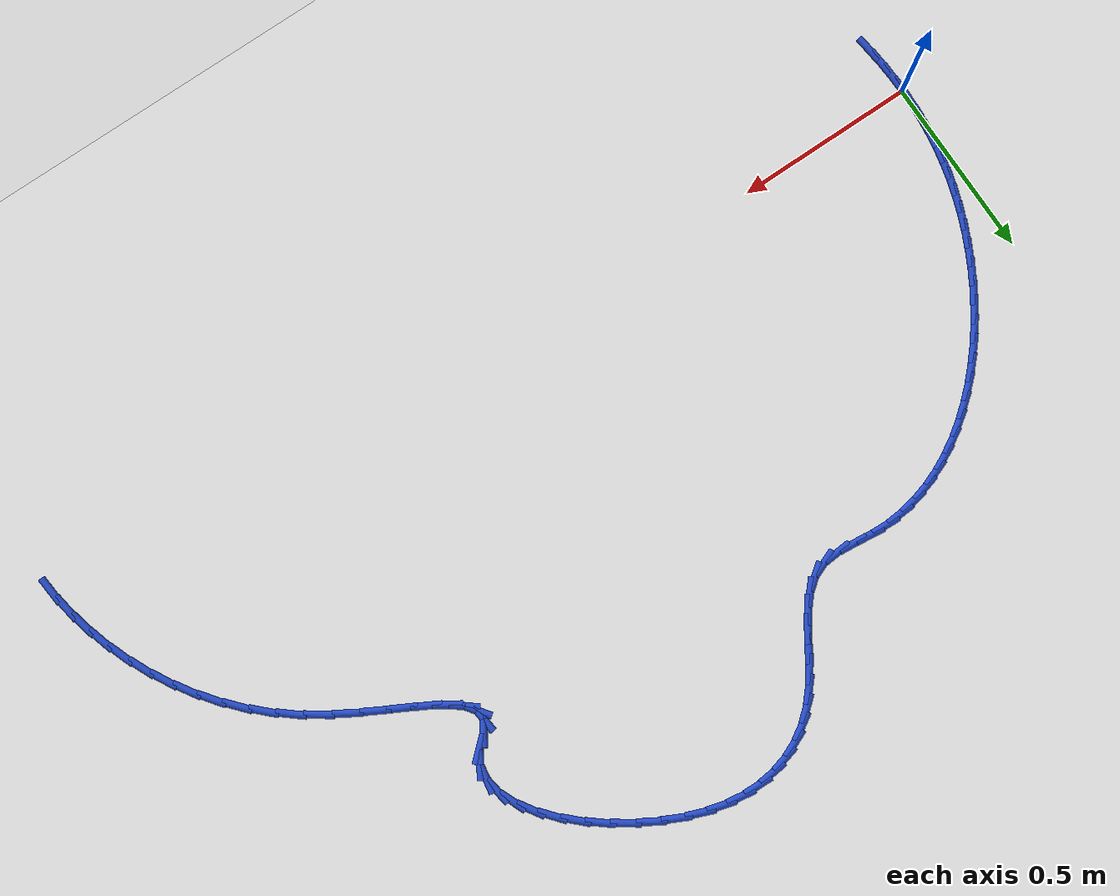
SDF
<sdf version="1.6">
 <world name="default">
  <model name="ground_plane">
   <static>1</static>
   <link name="link">
    <collision name="collision">
     <geometry><plane><normal>0 0 1</normal><size>100 100</size></plane></geometry>
     <surface><friction><ode><mu>100</mu><mu2>50</mu2></ode></friction></surface>
    </collision>
    <visual name="visual">
     <cast_shadows>0</cast_shadows>
     <geometry><plane><normal>0 0 1</normal><size>100 100</size></plane></geometry>
     <material>
      <script><uri>file://media/materials/scripts/gazebo.material</uri><name>Gazebo/WhiteGlow</name></script>
     </material>
    </visual>
   </link>
  </model>
  <model name="line">
   <link name="link_0">
    <pose>-1.734723475976807e-18 1.0408340855860843e-16 0.01 0 1.57 1.5473383544883825</pose>
    <collision name="collision">
     <geometry><cylinder><radius>0.01</radius><length>0.08</length></cylinder></geometry>
    </collision>
    <visual name="visual">
     <material>
      <script><name>Gazebo/Blue</name><uri>file://media/materials/scripts/gazebo.material</uri></script>
     </material>
     <geometry><cylinder><radius>0.01</radius><length>0.08</length></cylinder></geometry>
    </visual>
   </link>
   <link name="link_1">
    <pose>0.001089594265778912 0.04644026281776997 0.01 0 1.57 1.5030457825430155</pose>
    <collision name="collision">
     <geometry><cylinder><radius>0.01</radius><length>0.08</length></cylinder></geometry>
    </collision>
    <visual name="visual">
     <material>
      <script><name>Gazebo/Blue</name><uri>file://media/materials/scripts/gazebo.material</uri></script>
     </material>
     <geometry><cylinder><radius>0.01</radius><length>0.08</length></cylinder></geometry>
    </visual>
   </link>
   <link name="link_2">
    <pose>0.004218759372297732 0.09255614145097091 0.01 0 1.57 1.4571612512734187</pose>
    <collision name="collision">
     <geometry><cylinder><radius>0.01</radius><length>0.08</length></cylinder></geometry>
    </collision>
    <visual name="visual">
     <material>
      <script><name>Gazebo/Blue</name><uri>file://media/materials/scripts/gazebo.material</uri></script>
     </material>
     <geometry><cylinder><radius>0.01</radius><length>0.08</length></cylinder></geometry>
    </visual>
   </link>
   <link name="link_3">
    <pose>0.0094524364315779 0.13841460768023775 0.01 0 1.57 1.4100868340457353</pose>
    <collision name="collision">
     <geometry><cylinder><radius>0.01</radius><length>0.08</length></cylinder></geometry>
    </collision>
    <visual name="visual">
     <material>
      <script><name>Gazebo/Blue</name><uri>file://media/materials/scripts/gazebo.material</uri></script>
     </material>
     <geometry><cylinder><radius>0.01</radius><length>0.08</length></cylinder></geometry>
    </visual>
   </link>
   <link name="link_4">
    <pose>0.016855566555640876 0.1840826332862054 0.01 0 1.57 1.3622659840107938</pose>
    <collision name="collision">
     <geometry><cylinder><radius>0.01</radius><length>0.08</length></cylinder></geometry>
    </collision>
    <visual name="visual">
     <material>
      <script><name>Gazebo/Blue</name><uri>file://media/materials/scripts/gazebo.material</uri></script>
     </material>
     <geometry><cylinder><radius>0.01</radius><length>0.08</length></cylinder></geometry>
    </visual>
   </link>
   <link name="link_5">
    <pose>0.02649309085650813 0.2296271900495086 0.01 0 1.57 1.3141652478452397</pose>
    <collision name="collision">
     <geometry><cylinder><radius>0.01</radius><length>0.08</length></cylinder></geometry>
    </collision>
    <visual name="visual">
     <material>
      <script><name>Gazebo/Blue</name><uri>file://media/materials/scripts/gazebo.material</uri></script>
     </material>
     <geometry><cylinder><radius>0.01</radius><length>0.08</length></cylinder></geometry>
    </visual>
   </link>
   <link name="link_6">
    <pose>0.038429950446201094 0.2751152497507822 0.01 0 1.57 1.266253507206151</pose>
    <collision name="collision">
     <geometry><cylinder><radius>0.01</radius><length>0.08</length></cylinder></geometry>
    </collision>
    <visual name="visual">
     <material>
      <script><name>Gazebo/Blue</name><uri>file://media/materials/scripts/gazebo.material</uri></script>
     </material>
     <geometry><cylinder><radius>0.01</radius><length>0.08</length></cylinder></geometry>
    </visual>
   </link>
   <link name="link_7">
    <pose>0.05273108643674122 0.3206137841706611 0.01 0 1.57 1.2189810932053469</pose>
    <collision name="collision">
     <geometry><cylinder><radius>0.01</radius><length>0.08</length></cylinder></geometry>
    </collision>
    <visual name="visual">
     <material>
      <script><name>Gazebo/Blue</name><uri>file://media/materials/scripts/gazebo.material</uri></script>
     </material>
     <geometry><cylinder><radius>0.01</radius><length>0.08</length></cylinder></geometry>
    </visual>
   </link>
   <link name="link_8">
    <pose>0.06946140719264884 0.36618968924018297 0.01 0 1.57 1.1727773760705353</pose>
    <collision name="collision">
     <geometry><cylinder><radius>0.01</radius><length>0.08</length></cylinder></geometry>
    </collision>
    <visual name="visual">
     <material>
      <script><name>Gazebo/Blue</name><uri>file://media/materials/scripts/gazebo.material</uri></script>
     </material>
     <geometry><cylinder><radius>0.01</radius><length>0.08</length></cylinder></geometry>
    </visual>
   </link>
   <link name="link_9">
    <pose>0.08865097903789822 0.41182915993174 0.01 0 1.57 1.1275881045708818</pose>
    <collision name="collision">
     <geometry><cylinder><radius>0.01</radius><length>0.08</length></cylinder></geometry>
    </collision>
    <visual name="visual">
     <material>
      <script><name>Gazebo/Blue</name><uri>file://media/materials/scripts/gazebo.material</uri></script>
     </material>
     <geometry><cylinder><radius>0.01</radius><length>0.08</length></cylinder></geometry>
    </visual>
   </link>
   <link name="link_10">
    <pose>0.11022886189254487 0.4572844406942226 0.01 0 1.57 1.0827953044987713</pose>
    <collision name="collision">
     <geometry><cylinder><radius>0.01</radius><length>0.08</length></cylinder></geometry>
    </collision>
    <visual name="visual">
     <material>
      <script><name>Gazebo/Blue</name><uri>file://media/materials/scripts/gazebo.material</uri></script>
     </material>
     <geometry><cylinder><radius>0.01</radius><length>0.08</length></cylinder></geometry>
    </visual>
   </link>
   <link name="link_11">
    <pose>0.13410591677084932 0.502265623762674 0.01 0 1.57 1.037779779084442</pose>
    <collision name="collision">
     <geometry><cylinder><radius>0.01</radius><length>0.08</length></cylinder></geometry>
    </collision>
    <visual name="visual">
     <material>
      <script><name>Gazebo/Blue</name><uri>file://media/materials/scripts/gazebo.material</uri></script>
     </material>
     <geometry><cylinder><radius>0.01</radius><length>0.08</length></cylinder></geometry>
    </visual>
   </link>
   <link name="link_12">
    <pose>0.16019300468707245 0.5464828013721387 0.01 0 1.57 0.9919517788861468</pose>
    <collision name="collision">
     <geometry><cylinder><radius>0.01</radius><length>0.08</length></cylinder></geometry>
    </collision>
    <visual name="visual">
     <material>
      <script><name>Gazebo/Blue</name><uri>file://media/materials/scripts/gazebo.material</uri></script>
     </material>
     <geometry><cylinder><radius>0.01</radius><length>0.08</length></cylinder></geometry>
    </visual>
   </link>
   <link name="link_13">
    <pose>0.1884009866554748 0.5896460657576601 0.01 0 1.57 0.9447331194122285</pose>
    <collision name="collision">
     <geometry><cylinder><radius>0.01</radius><length>0.08</length></cylinder></geometry>
    </collision>
    <visual name="visual">
     <material>
      <script><name>Gazebo/Blue</name><uri>file://media/materials/scripts/gazebo.material</uri></script>
     </material>
     <geometry><cylinder><radius>0.01</radius><length>0.08</length></cylinder></geometry>
    </visual>
   </link>
   <link name="link_14">
    <pose>0.218640723690317 0.6314655091542819 0.01 0 1.57 0.8955430141777623</pose>
    <collision name="collision">
     <geometry><cylinder><radius>0.01</radius><length>0.08</length></cylinder></geometry>
    </collision>
    <visual name="visual">
     <material>
      <script><name>Gazebo/Blue</name><uri>file://media/materials/scripts/gazebo.material</uri></script>
     </material>
     <geometry><cylinder><radius>0.01</radius><length>0.08</length></cylinder></geometry>
    </visual>
   </link>
   <link name="link_15">
    <pose>0.25082307680585975 0.6716512237970481 0.01 0 1.57 0.8437877352451366</pose>
    <collision name="collision">
     <geometry><cylinder><radius>0.01</radius><length>0.08</length></cylinder></geometry>
    </collision>
    <visual name="visual">
     <material>
      <script><name>Gazebo/Blue</name><uri>file://media/materials/scripts/gazebo.material</uri></script>
     </material>
     <geometry><cylinder><radius>0.01</radius><length>0.08</length></cylinder></geometry>
    </visual>
   </link>
   <link name="link_16">
    <pose>0.28485890701636385 0.7099133019210027 0.01 0 1.57 0.7888549346922865</pose>
    <collision name="collision">
     <geometry><cylinder><radius>0.01</radius><length>0.08</length></cylinder></geometry>
    </collision>
    <visual name="visual">
     <material>
      <script><name>Gazebo/Blue</name><uri>file://media/materials/scripts/gazebo.material</uri></script>
     </material>
     <geometry><cylinder><radius>0.01</radius><length>0.08</length></cylinder></geometry>
    </visual>
   </link>
   <link name="link_17">
    <pose>0.32065907533608984 0.7459618357611892 0.01 0 1.57 0.730114356622109</pose>
    <collision name="collision">
     <geometry><cylinder><radius>0.01</radius><length>0.08</length></cylinder></geometry>
    </collision>
    <visual name="visual">
     <material>
      <script><name>Gazebo/Blue</name><uri>file://media/materials/scripts/gazebo.material</uri></script>
     </material>
     <geometry><cylinder><radius>0.01</radius><length>0.08</length></cylinder></geometry>
    </visual>
   </link>
   <link name="link_18">
    <pose>0.35813444277929835 0.7795069175526516 0.01 0 1.57 0.6669277463735875</pose>
    <collision name="collision">
     <geometry><cylinder><radius>0.01</radius><length>0.08</length></cylinder></geometry>
    </collision>
    <visual name="visual">
     <material>
      <script><name>Gazebo/Blue</name><uri>file://media/materials/scripts/gazebo.material</uri></script>
     </material>
     <geometry><cylinder><radius>0.01</radius><length>0.08</length></cylinder></geometry>
    </visual>
   </link>
   <link name="link_19">
    <pose>0.39719587036025 0.8102586395304332 0.01 0 1.57 0.5986719058905151</pose>
    <collision name="collision">
     <geometry><cylinder><radius>0.01</radius><length>0.08</length></cylinder></geometry>
    </collision>
    <visual name="visual">
     <material>
      <script><name>Gazebo/Blue</name><uri>file://media/materials/scripts/gazebo.material</uri></script>
     </material>
     <geometry><cylinder><radius>0.01</radius><length>0.08</length></cylinder></geometry>
    </visual>
   </link>
   <link name="link_20">
    <pose>0.4377542190932057 0.8379270939295784 0.01 0 1.57 0.5247796738081281</pose>
    <collision name="collision">
     <geometry><cylinder><radius>0.01</radius><length>0.08</length></cylinder></geometry>
    </collision>
    <visual name="visual">
     <material>
      <script><name>Gazebo/Blue</name><uri>file://media/materials/scripts/gazebo.material</uri></script>
     </material>
     <geometry><cylinder><radius>0.01</radius><length>0.08</length></cylinder></geometry>
    </visual>
   </link>
   <link name="link_21">
    <pose>0.479720349992426 0.8622223729851309 0.01 0 1.57 0.44480329778574185</pose>
    <collision name="collision">
     <geometry><cylinder><radius>0.01</radius><length>0.08</length></cylinder></geometry>
    </collision>
    <visual name="visual">
     <material>
      <script><name>Gazebo/Blue</name><uri>file://media/materials/scripts/gazebo.material</uri></script>
     </material>
     <geometry><cylinder><radius>0.01</radius><length>0.08</length></cylinder></geometry>
    </visual>
   </link>
   <link name="link_22">
    <pose>0.5230051240721714 0.8828545689321343 0.01 0 1.57 0.3585018195062949</pose>
    <collision name="collision">
     <geometry><cylinder><radius>0.01</radius><length>0.08</length></cylinder></geometry>
    </collision>
    <visual name="visual">
     <material>
      <script><name>Gazebo/Blue</name><uri>file://media/materials/scripts/gazebo.material</uri></script>
     </material>
     <geometry><cylinder><radius>0.01</radius><length>0.08</length></cylinder></geometry>
    </visual>
   </link>
   <link name="link_23">
    <pose>0.567519402346703 0.8995337740056326 0.01 0 1.57 0.26594703226347116</pose>
    <collision name="collision">
     <geometry><cylinder><radius>0.01</radius><length>0.08</length></cylinder></geometry>
    </collision>
    <visual name="visual">
     <material>
      <script><name>Gazebo/Blue</name><uri>file://media/materials/scripts/gazebo.material</uri></script>
     </material>
     <geometry><cylinder><radius>0.01</radius><length>0.08</length></cylinder></geometry>
    </visual>
   </link>
   <link name="link_24">
    <pose>0.6131740458302809 0.9119700804406694 0.01 0 1.57 0.16763056884097485</pose>
    <collision name="collision">
     <geometry><cylinder><radius>0.01</radius><length>0.08</length></cylinder></geometry>
    </collision>
    <visual name="visual">
     <material>
      <script><name>Gazebo/Blue</name><uri>file://media/materials/scripts/gazebo.material</uri></script>
     </material>
     <geometry><cylinder><radius>0.01</radius><length>0.08</length></cylinder></geometry>
    </visual>
   </link>
   <link name="link_25">
    <pose>0.6598799155371664 0.9198735804722888 0.01 0 1.57 0.06454035885185302</pose>
    <collision name="collision">
     <geometry><cylinder><radius>0.01</radius><length>0.08</length></cylinder></geometry>
    </collision>
    <visual name="visual">
     <material>
      <script><name>Gazebo/Blue</name><uri>file://media/materials/scripts/gazebo.material</uri></script>
     </material>
     <geometry><cylinder><radius>0.01</radius><length>0.08</length></cylinder></geometry>
    </visual>
   </link>
   <link name="link_26">
    <pose>0.7075478724816195 0.922954366335534 0.01 0 1.57 -0.04161294874814246</pose>
    <collision name="collision">
     <geometry><cylinder><radius>0.01</radius><length>0.08</length></cylinder></geometry>
    </collision>
    <visual name="visual">
     <material>
      <script><name>Gazebo/Blue</name><uri>file://media/materials/scripts/gazebo.material</uri></script>
     </material>
     <geometry><cylinder><radius>0.01</radius><length>0.08</length></cylinder></geometry>
    </visual>
   </link>
   <link name="link_27">
    <pose>0.7560852770717118 0.9209334151529838 0.01 0 1.57 -0.11482870221932892</pose>
    <collision name="collision">
     <geometry><cylinder><radius>0.01</radius><length>0.08</length></cylinder></geometry>
    </collision>
    <visual name="visual">
     <material>
      <script><name>Gazebo/Blue</name><uri>file://media/materials/scripts/gazebo.material</uri></script>
     </material>
     <geometry><cylinder><radius>0.01</radius><length>0.08</length></cylinder></geometry>
    </visual>
   </link>
   <link name="link_28">
    <pose>0.8048270281217221 0.9153117329133174 0.01 0 1.57 -0.08438538848249325</pose>
    <collision name="collision">
     <geometry><cylinder><radius>0.01</radius><length>0.08</length></cylinder></geometry>
    </collision>
    <visual name="visual">
     <material>
      <script><name>Gazebo/Blue</name><uri>file://media/materials/scripts/gazebo.material</uri></script>
     </material>
     <geometry><cylinder><radius>0.01</radius><length>0.08</length></cylinder></geometry>
    </visual>
   </link>
   <link name="link_29">
    <pose>0.8519054832552916 0.9113295424456483 0.01 0 1.57 0.07748621107274571</pose>
    <collision name="collision">
     <geometry><cylinder><radius>0.01</radius><length>0.08</length></cylinder></geometry>
    </collision>
    <visual name="visual">
     <material>
      <script><name>Gazebo/Blue</name><uri>file://media/materials/scripts/gazebo.material</uri></script>
     </material>
     <geometry><cylinder><radius>0.01</radius><length>0.08</length></cylinder></geometry>
    </visual>
   </link>
   <link name="link_30">
    <pose>0.8953012690869138 0.9146988634281619 0.01 0 1.57 0.3780868927722945</pose>
    <collision name="collision">
     <geometry><cylinder><radius>0.01</radius><length>0.08</length></cylinder></geometry>
    </collision>
    <visual name="visual">
     <material>
      <script><name>Gazebo/Blue</name><uri>file://media/materials/scripts/gazebo.material</uri></script>
     </material>
     <geometry><cylinder><radius>0.01</radius><length>0.08</length></cylinder></geometry>
    </visual>
   </link>
   <link name="link_31">
    <pose>0.9334954465727384 0.9298694420082915 0.01 0 1.57 0.6559467484666813</pose>
    <collision name="collision">
     <geometry><cylinder><radius>0.01</radius><length>0.08</length></cylinder></geometry>
    </collision>
    <visual name="visual">
     <material>
      <script><name>Gazebo/Blue</name><uri>file://media/materials/scripts/gazebo.material</uri></script>
     </material>
     <geometry><cylinder><radius>0.01</radius><length>0.08</length></cylinder></geometry>
    </visual>
   </link>
   <link name="link_32">
    <pose>0.9671557547510595 0.9557754438994175 0.01 0 1.57 0.8423977463634394</pose>
    <collision name="collision">
     <geometry><cylinder><radius>0.01</radius><length>0.08</length></cylinder></geometry>
    </collision>
    <visual name="visual">
     <material>
      <script><name>Gazebo/Blue</name><uri>file://media/materials/scripts/gazebo.material</uri></script>
     </material>
     <geometry><cylinder><radius>0.01</radius><length>0.08</length></cylinder></geometry>
    </visual>
   </link>
   <link name="link_33">
    <pose>0.9975470306072215 0.9898449412655947 0.01 0 1.57 0.9495827120929485</pose>
    <collision name="collision">
     <geometry><cylinder><radius>0.01</radius><length>0.08</length></cylinder></geometry>
    </collision>
    <visual name="visual">
     <material>
      <script><name>Gazebo/Blue</name><uri>file://media/materials/scripts/gazebo.material</uri></script>
     </material>
     <geometry><cylinder><radius>0.01</radius><length>0.08</length></cylinder></geometry>
    </visual>
   </link>
   <link name="link_34">
    <pose>1.0259341250950313 1.0295059710374463 0.01 0 1.57 0.9959812496932988</pose>
    <collision name="collision">
     <geometry><cylinder><radius>0.01</radius><length>0.08</length></cylinder></geometry>
    </collision>
    <visual name="visual">
     <material>
      <script><name>Gazebo/Blue</name><uri>file://media/materials/scripts/gazebo.material</uri></script>
     </material>
     <geometry><cylinder><radius>0.01</radius><length>0.08</length></cylinder></geometry>
    </visual>
   </link>
   <link name="link_35">
    <pose>1.0535818891682955 1.0721865701455955 0.01 0 1.57 0.9921432910593081</pose>
    <collision name="collision">
     <geometry><cylinder><radius>0.01</radius><length>0.08</length></cylinder></geometry>
    </collision>
    <visual name="visual">
     <material>
      <script><name>Gazebo/Blue</name><uri>file://media/materials/scripts/gazebo.material</uri></script>
     </material>
     <geometry><cylinder><radius>0.01</radius><length>0.08</length></cylinder></geometry>
    </visual>
   </link>
   <link name="link_36">
    <pose>1.0817551737808204 1.1153147755206647 0.01 0 1.57 0.9397279849570357</pose>
    <collision name="collision">
     <geometry><cylinder><radius>0.01</radius><length>0.08</length></cylinder></geometry>
    </collision>
    <visual name="visual">
     <material>
      <script><name>Gazebo/Blue</name><uri>file://media/materials/scripts/gazebo.material</uri></script>
     </material>
     <geometry><cylinder><radius>0.01</radius><length>0.08</length></cylinder></geometry>
    </visual>
   </link>
   <link name="link_37">
    <pose>1.1117188298864131 1.1563186240932772 0.01 0 1.57 0.8347586795625872</pose>
    <collision name="collision">
     <geometry><cylinder><radius>0.01</radius><length>0.08</length></cylinder></geometry>
    </collision>
    <visual name="visual">
     <material>
      <script><name>Gazebo/Blue</name><uri>file://media/materials/scripts/gazebo.material</uri></script>
     </material>
     <geometry><cylinder><radius>0.01</radius><length>0.08</length></cylinder></geometry>
    </visual>
   </link>
   <link name="link_38">
    <pose>1.1446857114057727 1.1927119442131495 0.01 0 1.57 0.6986438046717055</pose>
    <collision name="collision">
     <geometry><cylinder><radius>0.01</radius><length>0.08</length></cylinder></geometry>
    </collision>
    <visual name="visual">
     <material>
      <script><name>Gazebo/Blue</name><uri>file://media/materials/scripts/gazebo.material</uri></script>
     </material>
     <geometry><cylinder><radius>0.01</radius><length>0.08</length></cylinder></geometry>
    </visual>
   </link>
   <link name="link_39">
    <pose>1.1810911110173015 1.2232914851664756 0.01 0 1.57 0.5540406453895251</pose>
    <collision name="collision">
     <geometry><cylinder><radius>0.01</radius><length>0.08</length></cylinder></geometry>
    </collision>
    <visual name="visual">
     <material>
      <script><name>Gazebo/Blue</name><uri>file://media/materials/scripts/gazebo.material</uri></script>
     </material>
     <geometry><cylinder><radius>0.01</radius><length>0.08</length></cylinder></geometry>
    </visual>
   </link>
   <link name="link_40">
    <pose>1.220771992706759 1.2478411961729523 0.01 0 1.57 0.40480872486395214</pose>
    <collision name="collision">
     <geometry><cylinder><radius>0.01</radius><length>0.08</length></cylinder></geometry>
    </collision>
    <visual name="visual">
     <material>
      <script><name>Gazebo/Blue</name><uri>file://media/materials/scripts/gazebo.material</uri></script>
     </material>
     <geometry><cylinder><radius>0.01</radius><length>0.08</length></cylinder></geometry>
    </visual>
   </link>
   <link name="link_41">
    <pose>1.2635499431950588 1.2661703978493364 0.01 0 1.57 0.25512418469562126</pose>
    <collision name="collision">
     <geometry><cylinder><radius>0.01</radius><length>0.08</length></cylinder></geometry>
    </collision>
    <visual name="visual">
     <material>
      <script><name>Gazebo/Blue</name><uri>file://media/materials/scripts/gazebo.material</uri></script>
     </material>
     <geometry><cylinder><radius>0.01</radius><length>0.08</length></cylinder></geometry>
    </visual>
   </link>
   <link name="link_42">
    <pose>1.3092465492031138 1.278088410812385 0.01 0 1.57 0.10931660457676289</pose>
    <collision name="collision">
     <geometry><cylinder><radius>0.01</radius><length>0.08</length></cylinder></geometry>
    </collision>
    <visual name="visual">
     <material>
      <script><name>Gazebo/Blue</name><uri>file://media/materials/scripts/gazebo.material</uri></script>
     </material>
     <geometry><cylinder><radius>0.01</radius><length>0.08</length></cylinder></geometry>
    </visual>
   </link>
   <link name="link_43">
    <pose>1.3576833974518372 1.283404555678854 0.01 0 1.57 -0.028941738247848084</pose>
    <collision name="collision">
     <geometry><cylinder><radius>0.01</radius><length>0.08</length></cylinder></geometry>
    </collision>
    <visual name="visual">
     <material>
      <script><name>Gazebo/Blue</name><uri>file://media/materials/scripts/gazebo.material</uri></script>
     </material>
     <geometry><cylinder><radius>0.01</radius><length>0.08</length></cylinder></geometry>
    </visual>
   </link>
   <link name="link_44">
    <pose>1.408682074662142 1.2819281530655002 0.01 0 1.57 -0.15716618969718724</pose>
    <collision name="collision">
     <geometry><cylinder><radius>0.01</radius><length>0.08</length></cylinder></geometry>
    </collision>
    <visual name="visual">
     <material>
      <script><name>Gazebo/Blue</name><uri>file://media/materials/scripts/gazebo.material</uri></script>
     </material>
     <geometry><cylinder><radius>0.01</radius><length>0.08</length></cylinder></geometry>
    </visual>
   </link>
   <link name="link_45">
    <pose>1.4620641675549433 1.2734685235890806 0.01 0 1.57 -0.2738550529248303</pose>
    <collision name="collision">
     <geometry><cylinder><radius>0.01</radius><length>0.08</length></cylinder></geometry>
    </collision>
    <visual name="visual">
     <material>
      <script><name>Gazebo/Blue</name><uri>file://media/materials/scripts/gazebo.material</uri></script>
     </material>
     <geometry><cylinder><radius>0.01</radius><length>0.08</length></cylinder></geometry>
    </visual>
   </link>
   <link name="link_46">
    <pose>1.5176229147134406 1.257861353680724 0.01 0 1.57 -0.3742647170377452</pose>
    <collision name="collision">
     <geometry><cylinder><radius>0.01</radius><length>0.08</length></cylinder></geometry>
    </collision>
    <visual name="visual">
     <material>
      <script><name>Gazebo/Blue</name><uri>file://media/materials/scripts/gazebo.material</uri></script>
     </material>
     <geometry><cylinder><radius>0.01</radius><length>0.08</length></cylinder></geometry>
    </visual>
   </link>
   <link name="link_47">
    <pose>1.5745502792581543 1.23550155935475 0.01 0 1.57 -0.45979591747731413</pose>
    <collision name="collision">
     <geometry><cylinder><radius>0.01</radius><length>0.08</length></cylinder></geometry>
    </collision>
    <visual name="visual">
     <material>
      <script><name>Gazebo/Blue</name><uri>file://media/materials/scripts/gazebo.material</uri></script>
     </material>
     <geometry><cylinder><radius>0.01</radius><length>0.08</length></cylinder></geometry>
    </visual>
   </link>
   <link name="link_48">
    <pose>1.631463851525005 1.207318264776078 0.01 0 1.57 -0.5372290545528736</pose>
    <collision name="collision">
     <geometry><cylinder><radius>0.01</radius><length>0.08</length></cylinder></geometry>
    </collision>
    <visual name="visual">
     <material>
      <script><name>Gazebo/Blue</name><uri>file://media/materials/scripts/gazebo.material</uri></script>
     </material>
     <geometry><cylinder><radius>0.01</radius><length>0.08</length></cylinder></geometry>
    </visual>
   </link>
   <link name="link_49">
    <pose>1.6869582577822209 1.1742619523502424 0.01 0 1.57 -0.6121255080288873</pose>
    <collision name="collision">
     <geometry><cylinder><radius>0.01</radius><length>0.08</length></cylinder></geometry>
    </collision>
    <visual name="visual">
     <material>
      <script><name>Gazebo/Blue</name><uri>file://media/materials/scripts/gazebo.material</uri></script>
     </material>
     <geometry><cylinder><radius>0.01</radius><length>0.08</length></cylinder></geometry>
    </visual>
   </link>
   <link name="link_50">
    <pose>1.7396281242980278 1.1372831044827763 0.01 0 1.57 -0.6896518820978307</pose>
    <collision name="collision">
     <geometry><cylinder><radius>0.01</radius><length>0.08</length></cylinder></geometry>
    </collision>
    <visual name="visual">
     <material>
      <script><name>Gazebo/Blue</name><uri>file://media/materials/scripts/gazebo.material</uri></script>
     </material>
     <geometry><cylinder><radius>0.01</radius><length>0.08</length></cylinder></geometry>
    </visual>
   </link>
   <link name="link_51">
    <pose>1.788068077340651 1.0973322035792132 0.01 0 1.57 -0.7755822200771194</pose>
    <collision name="collision">
     <geometry><cylinder><radius>0.01</radius><length>0.08</length></cylinder></geometry>
    </collision>
    <visual name="visual">
     <material>
      <script><name>Gazebo/Blue</name><uri>file://media/materials/scripts/gazebo.material</uri></script>
     </material>
     <geometry><cylinder><radius>0.01</radius><length>0.08</length></cylinder></geometry>
    </visual>
   </link>
   <link name="link_52">
    <pose>1.8308727431783183 1.055359732045087 0.01 0 1.57 -0.877508052750104</pose>
    <collision name="collision">
     <geometry><cylinder><radius>0.01</radius><length>0.08</length></cylinder></geometry>
    </collision>
    <visual name="visual">
     <material>
      <script><name>Gazebo/Blue</name><uri>file://media/materials/scripts/gazebo.material</uri></script>
     </material>
     <geometry><cylinder><radius>0.01</radius><length>0.08</length></cylinder></geometry>
    </visual>
   </link>
   <link name="link_53">
    <pose>1.866636748079254 1.012316172285931 0.01 0 1.57 -1.0065466959410987</pose>
    <collision name="collision">
     <geometry><cylinder><radius>0.01</radius><length>0.08</length></cylinder></geometry>
    </collision>
    <visual name="visual">
     <material>
      <script><name>Gazebo/Blue</name><uri>file://media/materials/scripts/gazebo.material</uri></script>
     </material>
     <geometry><cylinder><radius>0.01</radius><length>0.08</length></cylinder></geometry>
    </visual>
   </link>
   <link name="link_54">
    <pose>1.8939547183116852 0.9691520067072793 0.01 0 1.57 -1.1794867129779139</pose>
    <collision name="collision">
     <geometry><cylinder><radius>0.01</radius><length>0.08</length></cylinder></geometry>
    </collision>
    <visual name="visual">
     <material>
      <script><name>Gazebo/Blue</name><uri>file://media/materials/scripts/gazebo.material</uri></script>
     </material>
     <geometry><cylinder><radius>0.01</radius><length>0.08</length></cylinder></geometry>
    </visual>
   </link>
   <link name="link_55">
    <pose>1.911421280143838 0.9268177177146641 0.01 0 1.57 -1.418852538185806</pose>
    <collision name="collision">
     <geometry><cylinder><radius>0.01</radius><length>0.08</length></cylinder></geometry>
    </collision>
    <visual name="visual">
     <material>
      <script><name>Gazebo/Blue</name><uri>file://media/materials/scripts/gazebo.material</uri></script>
     </material>
     <geometry><cylinder><radius>0.01</radius><length>0.08</length></cylinder></geometry>
    </visual>
   </link>
   <link name="link_56">
    <pose>1.9176310598439388 0.8862637877136208 0.01 0 1.57 1.4018293170558438</pose>
    <collision name="collision">
     <geometry><cylinder><radius>0.01</radius><length>0.08</length></cylinder></geometry>
    </collision>
    <visual name="visual">
     <material>
      <script><name>Gazebo/Blue</name><uri>file://media/materials/scripts/gazebo.material</uri></script>
     </material>
     <geometry><cylinder><radius>0.01</radius><length>0.08</length></cylinder></geometry>
    </visual>
   </link>
   <link name="link_57">
    <pose>1.9111786836802134 0.848440699109682 0.01 0 1.57 1.0296266846451025</pose>
    <collision name="collision">
     <geometry><cylinder><radius>0.01</radius><length>0.08</length></cylinder></geometry>
    </collision>
    <visual name="visual">
     <material>
      <script><name>Gazebo/Blue</name><uri>file://media/materials/scripts/gazebo.material</uri></script>
     </material>
     <geometry><cylinder><radius>0.01</radius><length>0.08</length></cylinder></geometry>
    </visual>
   </link>
   <link name="link_58">
    <pose>1.8906587779208883 0.8142989343083809 0.01 0 1.57 0.7320176689935225</pose>
    <collision name="collision">
     <geometry><cylinder><radius>0.01</radius><length>0.08</length></cylinder></geometry>
    </collision>
    <visual name="visual">
     <material>
      <script><name>Gazebo/Blue</name><uri>file://media/materials/scripts/gazebo.material</uri></script>
     </material>
     <geometry><cylinder><radius>0.01</radius><length>0.08</length></cylinder></geometry>
    </visual>
   </link>
   <link name="link_59">
    <pose>1.857509855114538 0.7845127150880845 0.01 0 1.57 0.9939674138368683</pose>
    <collision name="collision">
     <geometry><cylinder><radius>0.01</radius><length>0.08</length></cylinder></geometry>
    </collision>
    <visual name="visual">
     <material>
      <script><name>Gazebo/Blue</name><uri>file://media/materials/scripts/gazebo.material</uri></script>
     </material>
     <geometry><cylinder><radius>0.01</radius><length>0.08</length></cylinder></geometry>
    </visual>
   </link>
   <link name="link_60">
    <pose>1.8394296436210553 0.7567246037293542 0.01 0 1.57 -1.4835059076597954</pose>
    <collision name="collision">
     <geometry><cylinder><radius>0.01</radius><length>0.08</length></cylinder></geometry>
    </collision>
    <visual name="visual">
     <material>
      <script><name>Gazebo/Blue</name><uri>file://media/materials/scripts/gazebo.material</uri></script>
     </material>
     <geometry><cylinder><radius>0.01</radius><length>0.08</length></cylinder></geometry>
    </visual>
   </link>
   <link name="link_61">
    <pose>1.8417955072330823 0.7296901182837572 0.01 0 1.57 -0.9347552738750693</pose>
    <collision name="collision">
     <geometry><cylinder><radius>0.01</radius><length>0.08</length></cylinder></geometry>
    </collision>
    <visual name="visual">
     <material>
      <script><name>Gazebo/Blue</name><uri>file://media/materials/scripts/gazebo.material</uri></script>
     </material>
     <geometry><cylinder><radius>0.01</radius><length>0.08</length></cylinder></geometry>
    </visual>
   </link>
   <link name="link_62">
    <pose>1.8616177484712118 0.7028455647499979 0.01 0 1.57 -0.670944886288404</pose>
    <collision name="collision">
     <geometry><cylinder><radius>0.01</radius><length>0.08</length></cylinder></geometry>
    </collision>
    <visual name="visual">
     <material>
      <script><name>Gazebo/Blue</name><uri>file://media/materials/scripts/gazebo.material</uri></script>
     </material>
     <geometry><cylinder><radius>0.01</radius><length>0.08</length></cylinder></geometry>
    </visual>
   </link>
   <link name="link_63">
    <pose>1.8959066698560367 0.6756272491267801 0.01 0 1.57 -0.5515303790536388</pose>
    <collision name="collision">
     <geometry><cylinder><radius>0.01</radius><length>0.08</length></cylinder></geometry>
    </collision>
    <visual name="visual">
     <material>
      <script><name>Gazebo/Blue</name><uri>file://media/materials/scripts/gazebo.material</uri></script>
     </material>
     <geometry><cylinder><radius>0.01</radius><length>0.08</length></cylinder></geometry>
    </visual>
   </link>
   <link name="link_64">
    <pose>1.9416725739081506 0.647471477412809 0.01 0 1.57 -0.5002593071246048</pose>
    <collision name="collision">
     <geometry><cylinder><radius>0.01</radius><length>0.08</length></cylinder></geometry>
    </collision>
    <visual name="visual">
     <material>
      <script><name>Gazebo/Blue</name><uri>file://media/materials/scripts/gazebo.material</uri></script>
     </material>
     <geometry><cylinder><radius>0.01</radius><length>0.08</length></cylinder></geometry>
    </visual>
   </link>
   <link name="link_65">
    <pose>1.9959257631481455 0.6178145556067881 0.01 0 1.57 -0.48806197262878614</pose>
    <collision name="collision">
     <geometry><cylinder><radius>0.01</radius><length>0.08</length></cylinder></geometry>
    </collision>
    <visual name="visual">
     <material>
      <script><name>Gazebo/Blue</name><uri>file://media/materials/scripts/gazebo.material</uri></script>
     </material>
     <geometry><cylinder><radius>0.01</radius><length>0.08</length></cylinder></geometry>
    </visual>
   </link>
   <link name="link_66">
    <pose>2.055676540096615 0.5860927897074215 0.01 0 1.57 -0.5041745135289533</pose>
    <collision name="collision">
     <geometry><cylinder><radius>0.01</radius><length>0.08</length></cylinder></geometry>
    </collision>
    <visual name="visual">
     <material>
      <script><name>Gazebo/Blue</name><uri>file://media/materials/scripts/gazebo.material</uri></script>
     </material>
     <geometry><cylinder><radius>0.01</radius><length>0.08</length></cylinder></geometry>
    </visual>
   </link>
   <link name="link_67">
    <pose>2.117935207274152 0.5517424857134144 0.01 0 1.57 -0.5460707648363307</pose>
    <collision name="collision">
     <geometry><cylinder><radius>0.01</radius><length>0.08</length></cylinder></geometry>
    </collision>
    <visual name="visual">
     <material>
      <script><name>Gazebo/Blue</name><uri>file://media/materials/scripts/gazebo.material</uri></script>
     </material>
     <geometry><cylinder><radius>0.01</radius><length>0.08</length></cylinder></geometry>
    </visual>
   </link>
   <link name="link_68">
    <pose>2.1797120672013506 0.5141999496234702 0.01 0 1.57 -0.6153120141274016</pose>
    <collision name="collision">
     <geometry><cylinder><radius>0.01</radius><length>0.08</length></cylinder></geometry>
    </collision>
    <visual name="visual">
     <material>
      <script><name>Gazebo/Blue</name><uri>file://media/materials/scripts/gazebo.material</uri></script>
     </material>
     <geometry><cylinder><radius>0.01</radius><length>0.08</length></cylinder></geometry>
    </visual>
   </link>
   <link name="link_69">
    <pose>2.2380994836153865 0.4729284966766146 0.01 0 1.57 -0.6984010794352226</pose>
    <collision name="collision">
     <geometry><cylinder><radius>0.01</radius><length>0.08</length></cylinder></geometry>
    </collision>
    <visual name="visual">
     <material>
      <script><name>Gazebo/Blue</name><uri>file://media/materials/scripts/gazebo.material</uri></script>
     </material>
     <geometry><cylinder><radius>0.01</radius><length>0.08</length></cylinder></geometry>
    </visual>
   </link>
   <link name="link_70">
    <pose>2.2917335562703327 0.4278995400758916 0.01 0 1.57 -0.7799694001548735</pose>
    <collision name="collision">
     <geometry><cylinder><radius>0.01</radius><length>0.08</length></cylinder></geometry>
    </collision>
    <visual name="visual">
     <material>
      <script><name>Gazebo/Blue</name><uri>file://media/materials/scripts/gazebo.material</uri></script>
     </material>
     <geometry><cylinder><radius>0.01</radius><length>0.08</length></cylinder></geometry>
    </visual>
   </link>
   <link name="link_71">
    <pose>2.3406243537924114 0.3795367146340812 0.01 0 1.57 -0.8591329846517987</pose>
    <collision name="collision">
     <geometry><cylinder><radius>0.01</radius><length>0.08</length></cylinder></geometry>
    </collision>
    <visual name="visual">
     <material>
      <script><name>Gazebo/Blue</name><uri>file://media/materials/scripts/gazebo.material</uri></script>
     </material>
     <geometry><cylinder><radius>0.01</radius><length>0.08</length></cylinder></geometry>
    </visual>
   </link>
   <link name="link_72">
    <pose>2.384829908066514 0.3282794415638477 0.01 0 1.57 -0.9357592254771411</pose>
    <collision name="collision">
     <geometry><cylinder><radius>0.01</radius><length>0.08</length></cylinder></geometry>
    </collision>
    <visual name="visual">
     <material>
      <script><name>Gazebo/Blue</name><uri>file://media/materials/scripts/gazebo.material</uri></script>
     </material>
     <geometry><cylinder><radius>0.01</radius><length>0.08</length></cylinder></geometry>
    </visual>
   </link>
   <link name="link_73">
    <pose>2.424408250977531 0.27456714207785443 0.01 0 1.57 -1.0098876976635547</pose>
    <collision name="collision">
     <geometry><cylinder><radius>0.01</radius><length>0.08</length></cylinder></geometry>
    </collision>
    <visual name="visual">
     <material>
      <script><name>Gazebo/Blue</name><uri>file://media/materials/scripts/gazebo.material</uri></script>
     </material>
     <geometry><cylinder><radius>0.01</radius><length>0.08</length></cylinder></geometry>
    </visual>
   </link>
   <link name="link_74">
    <pose>2.4594174144103533 0.21883923738876418 0.01 0 1.57 -1.081711163616409</pose>
    <collision name="collision">
     <geometry><cylinder><radius>0.01</radius><length>0.08</length></cylinder></geometry>
    </collision>
    <visual name="visual">
     <material>
      <script><name>Gazebo/Blue</name><uri>file://media/materials/scripts/gazebo.material</uri></script>
     </material>
     <geometry><cylinder><radius>0.01</radius><length>0.08</length></cylinder></geometry>
    </visual>
   </link>
   <link name="link_75">
    <pose>2.4899154302498716 0.16153514870924163 0.01 0 1.57 -1.1515552584833622</pose>
    <collision name="collision">
     <geometry><cylinder><radius>0.01</radius><length>0.08</length></cylinder></geometry>
    </collision>
    <visual name="visual">
     <material>
      <script><name>Gazebo/Blue</name><uri>file://media/materials/scripts/gazebo.material</uri></script>
     </material>
     <geometry><cylinder><radius>0.01</radius><length>0.08</length></cylinder></geometry>
    </visual>
   </link>
   <link name="link_76">
    <pose>2.515960330380976 0.1030942972519499 0.01 0 1.57 -1.2198612167874734</pose>
    <collision name="collision">
     <geometry><cylinder><radius>0.01</radius><length>0.08</length></cylinder></geometry>
    </collision>
    <visual name="visual">
     <material>
      <script><name>Gazebo/Blue</name><uri>file://media/materials/scripts/gazebo.material</uri></script>
     </material>
     <geometry><cylinder><radius>0.01</radius><length>0.08</length></cylinder></geometry>
    </visual>
   </link>
   <link name="link_77">
    <pose>2.537610146688558 0.043956104229551846 0.01 0 1.57 -1.2871744872207318</pose>
    <collision name="collision">
     <geometry><cylinder><radius>0.01</radius><length>0.08</length></cylinder></geometry>
    </collision>
    <visual name="visual">
     <material>
      <script><name>Gazebo/Blue</name><uri>file://media/materials/scripts/gazebo.material</uri></script>
     </material>
     <geometry><cylinder><radius>0.01</radius><length>0.08</length></cylinder></geometry>
    </visual>
   </link>
   <link name="link_78">
    <pose>2.5549229110575093 -0.015440009145287821 0.01 0 1.57 -1.354140845468903</pose>
    <collision name="collision">
     <geometry><cylinder><radius>0.01</radius><length>0.08</length></cylinder></geometry>
    </collision>
    <visual name="visual">
     <material>
      <script><name>Gazebo/Blue</name><uri>file://media/materials/scripts/gazebo.material</uri></script>
     </material>
     <geometry><cylinder><radius>0.01</radius><length>0.08</length></cylinder></geometry>
    </visual>
   </link>
   <link name="link_79">
    <pose>2.5679566553727184 -0.07465462165990668 0.01 0 1.57 -1.4215107797532878</pose>
    <collision name="collision">
     <geometry><cylinder><radius>0.01</radius><length>0.08</length></cylinder></geometry>
    </collision>
    <visual name="visual">
     <material>
      <script><name>Gazebo/Blue</name><uri>file://media/materials/scripts/gazebo.material</uri></script>
     </material>
     <geometry><cylinder><radius>0.01</radius><length>0.08</length></cylinder></geometry>
    </visual>
   </link>
   <link name="link_80">
    <pose>2.576769411519078 -0.13324831210163995 0.01 0 1.57 -1.490152390474565</pose>
    <collision name="collision">
     <geometry><cylinder><radius>0.01</radius><length>0.08</length></cylinder></geometry>
    </collision>
    <visual name="visual">
     <material>
      <script><name>Gazebo/Blue</name><uri>file://media/materials/scripts/gazebo.material</uri></script>
     </material>
     <geometry><cylinder><radius>0.01</radius><length>0.08</length></cylinder></geometry>
    </visual>
   </link>
   <link name="link_167">
    <pose>0.00898300234464281 -0.14059783495948314 0.01 0 1.57 -1.462279506731693</pose>
    <collision name="collision">
     <geometry><cylinder><radius>0.01</radius><length>0.08</length></cylinder></geometry>
    </collision>
    <visual name="visual">
     <material>
      <script><name>Gazebo/Blue</name><uri>file://media/materials/scripts/gazebo.material</uri></script>
     </material>
     <geometry><cylinder><radius>0.01</radius><length>0.08</length></cylinder></geometry>
    </visual>
   </link>
   <link name="link_168">
    <pose>0.0038764324959848187 -0.09372483156138883 0.01 0 1.57 -1.5076796839449909</pose>
    <collision name="collision">
     <geometry><cylinder><radius>0.01</radius><length>0.08</length></cylinder></geometry>
    </collision>
    <visual name="visual">
     <material>
      <script><name>Gazebo/Blue</name><uri>file://media/materials/scripts/gazebo.material</uri></script>
     </material>
     <geometry><cylinder><radius>0.01</radius><length>0.08</length></cylinder></geometry>
    </visual>
   </link>
   <link name="link_169">
    <pose>0.0009096195821156339 -0.04678202706417386 0.01 0 1.57 -1.5513549935582613</pose>
    <collision name="collision">
     <geometry><cylinder><radius>0.01</radius><length>0.08</length></cylinder></geometry>
    </collision>
    <visual name="visual">
     <material>
      <script><name>Gazebo/Blue</name><uri>file://media/materials/scripts/gazebo.material</uri></script>
     </material>
     <geometry><cylinder><radius>0.01</radius><length>0.08</length></cylinder></geometry>
    </visual>
   </link>
   <link name="link_170">
    <pose>1.0408340855860843e-17 4.163336342344337e-17 0.01 0 1.57 1.5478429381411434</pose>
    <collision name="collision">
     <geometry><cylinder><radius>0.01</radius><length>0.08</length></cylinder></geometry>
    </collision>
    <visual name="visual">
     <material>
      <script><name>Gazebo/Blue</name><uri>file://media/materials/scripts/gazebo.material</uri></script>
     </material>
     <geometry><cylinder><radius>0.01</radius><length>0.08</length></cylinder></geometry>
    </visual>
   </link>
   <link name="link_171">
    <pose>0.00106501014660282 0.04639067109897018 0.01 0 1.57 1.547842938141143</pose>
    <collision name="collision">
     <geometry><cylinder><radius>0.01</radius><length>0.08</length></cylinder></geometry>
    </collision>
    <visual name="visual">
     <material>
      <script><name>Gazebo/Blue</name><uri>file://media/materials/scripts/gazebo.material</uri></script>
     </material>
     <geometry><cylinder><radius>0.01</radius><length>0.08</length></cylinder></geometry>
    </visual>
   </link>
  </model>
 </world>
</sdf>
